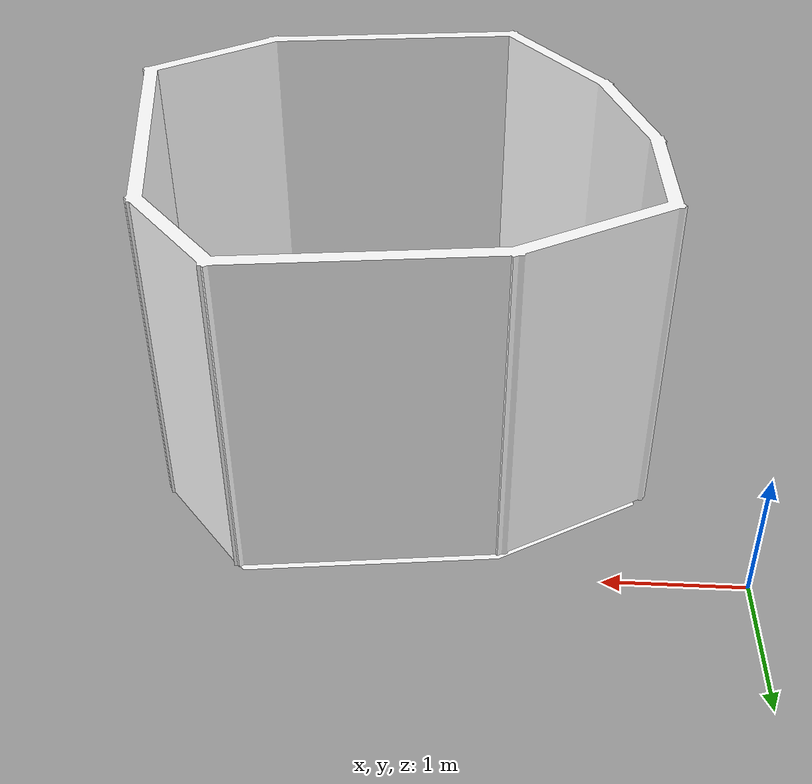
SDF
<sdf version="1.7">
  <world name="sim_world">
    <physics name="10ms" type="ode">
      <max_step_size>0.01</max_step_size>
      <real_time_factor>1.0</real_time_factor>
    </physics>
    <plugin filename="gz-sim-physics-system" name="gz::sim::systems::Physics">
    </plugin>
    <plugin filename="gz-sim-user-commands-system" name="gz::sim::systems::UserCommands">
    </plugin>
    <plugin filename="gz-sim-scene-broadcaster-system" name="gz::sim::systems::SceneBroadcaster">
    </plugin>
    <plugin filename="libdoor.so" name="door">
    </plugin>
    <plugin filename="liblift.so" name="lift">
    </plugin>
    <scene>
      <ambient>1 1 1</ambient>
      <background>0.8 0.8 0.8</background>
      <grid>false</grid>
    </scene>
    <gui fullscreen="0">
      <window>
        <width>1000</width>
        <height>845</height>
        <style material_theme="Light" material_primary="DeepOrange" material_accent="LightBlue" toolbar_color_light="#f3f3f3" toolbar_text_color_light="#111111" toolbar_color_dark="#414141" toolbar_text_color_dark="#f3f3f3" plugin_toolbar_color_light="#bbdefb" plugin_toolbar_text_color_light="#111111" plugin_toolbar_color_dark="#607d8b" plugin_toolbar_text_color_dark="#eeeeee" />
        <menus>
          <drawer default="false">
          </drawer>
        </menus>
      </window>
      <plugin filename="MinimalScene" name="3D View">
        <gz-gui>
          <title>3D View</title>
          <property type="bool" key="showTitleBar">false</property>
          <property type="string" key="state">docked</property>
        </gz-gui>
        <engine>ogre2</engine>
        <scene>scene</scene>
        <ambient_light>0.4 0.4 0.4</ambient_light>
        <background_color>0.8 0.8 0.8</background_color>
        <camera_pose>2.577976925602492 -21.82734828681878 10 0 0.6 1.57</camera_pose>
      </plugin>
      <plugin filename="EntityContextMenuPlugin" name="Entity context menu">
        <gz-gui>
          <property key="state" type="string">floating</property>
          <property key="width" type="double">5</property>
          <property key="height" type="double">5</property>
          <property key="showTitleBar" type="bool">false</property>
        </gz-gui>
      </plugin>
      <plugin filename="GzSceneManager" name="Scene Manager">
        <gz-gui>
          <property key="resizable" type="bool">false</property>
          <property key="width" type="double">5</property>
          <property key="height" type="double">5</property>
          <property key="state" type="string">floating</property>
          <property key="showTitleBar" type="bool">false</property>
        </gz-gui>
      </plugin>
      <plugin filename="InteractiveViewControl" name="Interactive view control">
        <gz-gui>
          <property key="resizable" type="bool">false</property>
          <property key="width" type="double">5</property>
          <property key="height" type="double">5</property>
          <property key="state" type="string">floating</property>
          <property key="showTitleBar" type="bool">false</property>
        </gz-gui>
      </plugin>
      <plugin filename="CameraTracking" name="Camera Tracking">
        <gz-gui>
          <property key="resizable" type="bool">false</property>
          <property key="width" type="double">5</property>
          <property key="height" type="double">5</property>
          <property key="state" type="string">floating</property>
          <property key="showTitleBar" type="bool">false</property>
        </gz-gui>
      </plugin>
      <plugin filename="MarkerManager" name="Marker manager">
        <gz-gui>
          <property key="resizable" type="bool">false</property>
          <property key="width" type="double">5</property>
          <property key="height" type="double">5</property>
          <property key="state" type="string">floating</property>
          <property key="showTitleBar" type="bool">false</property>
        </gz-gui>
      </plugin>
      <plugin filename="SelectEntities" name="Select Entities">
        <gz-gui>
          <property key="resizable" type="bool">false</property>
          <property key="width" type="double">5</property>
          <property key="height" type="double">5</property>
          <property key="state" type="string">floating</property>
          <property key="showTitleBar" type="bool">false</property>
        </gz-gui>
      </plugin>
      <plugin filename="Spawn" name="Spawn Entities">
        <gz-gui>
          <property key="resizable" type="bool">false</property>
          <property key="width" type="double">5</property>
          <property key="height" type="double">5</property>
          <property key="state" type="string">floating</property>
          <property key="showTitleBar" type="bool">false</property>
        </gz-gui>
      </plugin>
      <plugin filename="VisualizationCapabilities" name="Visualization Capabilities">
        <gz-gui>
          <property key="resizable" type="bool">false</property>
          <property key="width" type="double">5</property>
          <property key="height" type="double">5</property>
          <property key="state" type="string">floating</property>
          <property key="showTitleBar" type="bool">false</property>
        </gz-gui>
      </plugin>
      <plugin filename="WorldControl" name="World control">
        <gz-gui>
          <title>World control</title>
          <property type="bool" key="showTitleBar">false</property>
          <property type="bool" key="resizable">false</property>
          <property type="double" key="height">72</property>
          <property type="double" key="z">1</property>
          <property type="string" key="state">floating</property>
          <anchors target="3D View">
            <line own="left" target="left" />
            <line own="bottom" target="bottom" />
          </anchors>
        </gz-gui>
        <play_pause>true</play_pause>
        <step>true</step>
        <start_paused>true</start_paused>
        <use_event>true</use_event>
      </plugin>
      <plugin filename="WorldStats" name="World stats">
        <gz-gui>
          <title>World stats</title>
          <property type="bool" key="showTitleBar">false</property>
          <property type="bool" key="resizable">false</property>
          <property type="double" key="height">110</property>
          <property type="double" key="width">290</property>
          <property type="double" key="z">1</property>
          <property type="string" key="state">floating</property>
          <anchors target="3D View">
            <line own="right" target="right" />
            <line own="bottom" target="bottom" />
          </anchors>
        </gz-gui>
        <sim_time>true</sim_time>
        <real_time>true</real_time>
        <real_time_factor>true</real_time_factor>
        <iterations>true</iterations>
      </plugin>
      <plugin filename="Shapes" name="Shapes">
        <gz-gui>
          <property key="resizable" type="bool">false</property>
          <property key="x" type="double">0</property>
          <property key="y" type="double">0</property>
          <property key="width" type="double">250</property>
          <property key="height" type="double">50</property>
          <property key="state" type="string">floating</property>
          <property key="showTitleBar" type="bool">false</property>
          <property key="cardBackground" type="string">#666666</property>
        </gz-gui>
      </plugin>
      <plugin filename="Lights" name="Lights">
        <gz-gui>
          <property key="resizable" type="bool">false</property>
          <property key="x" type="double">250</property>
          <property key="y" type="double">0</property>
          <property key="width" type="double">150</property>
          <property key="height" type="double">50</property>
          <property key="state" type="string">floating</property>
          <property key="showTitleBar" type="bool">false</property>
          <property key="cardBackground" type="string">#666666</property>
        </gz-gui>
      </plugin>
      <plugin filename="TransformControl" name="Transform control">
        <gz-gui>
          <property key="resizable" type="bool">false</property>
          <property key="x" type="double">0</property>
          <property key="y" type="double">50</property>
          <property key="width" type="double">250</property>
          <property key="height" type="double">50</property>
          <property key="state" type="string">floating</property>
          <property key="showTitleBar" type="bool">false</property>
          <property key="cardBackground" type="string">#777777</property>
        </gz-gui>
      </plugin>
      <plugin filename="Screenshot" name="Screenshot">
        <gz-gui>
          <property key="resizable" type="bool">false</property>
          <property key="x" type="double">250</property>
          <property key="y" type="double">50</property>
          <property key="width" type="double">50</property>
          <property key="height" type="double">50</property>
          <property key="state" type="string">floating</property>
          <property key="showTitleBar" type="bool">false</property>
          <property key="cardBackground" type="string">#777777</property>
        </gz-gui>
      </plugin>
      <plugin filename="CopyPaste" name="CopyPaste">
        <gz-gui>
          <property key="resizable" type="bool">false</property>
          <property key="x" type="double">300</property>
          <property key="y" type="double">50</property>
          <property key="width" type="double">100</property>
          <property key="height" type="double">50</property>
          <property key="state" type="string">floating</property>
          <property key="showTitleBar" type="bool">false</property>
          <property key="cardBackground" type="string">#777777</property>
        </gz-gui>
      </plugin>
      <plugin filename="ComponentInspector" name="Component inspector">
        <gz-gui>
          <property type="bool" key="showTitleBar">false</property>
          <property type="string" key="state">docked</property>
        </gz-gui>
      </plugin>
      <plugin filename="EntityTree" name="Entity tree">
        <gz-gui>
          <property type="bool" key="showTitleBar">false</property>
          <property type="string" key="state">docked</property>
        </gz-gui>
      </plugin>
      <plugin filename="toggle_charging" name="toggle_charging" />
      <plugin name="toggle_floors" filename="toggle_floors">
        <floor name="L1" model_name="tb4_20260612_L1" />
      </plugin>
    </gui>
    <light type="directional" name="sun">
      <cast_shadows>true</cast_shadows>
      <pose>0 0 10 0 0 0</pose>
      <diffuse>1 1 1 1</diffuse>
      <specular>0.2 0.2 0.2 1</specular>
      <attenuation>
        <range>1000</range>
        <constant>0.09</constant>
        <linear>0.001</linear>
        <quadratic>0.001</quadratic>
      </attenuation>
      <direction>-0.5 0.1 -0.9</direction>
    </light>
    <include>
      <name>tb4_20260612_L1</name>
      <uri>model://tb4_20260612_L1</uri>
      <pose>0 0 0.0 0 0 0</pose>
    </include>
    <plugin name="register_component" filename="libregister_component.so">
      <component name="Chargers">
        <rmf_charger name="robot6_charger" x="1.1972718347573243" y="-1.1213489332479822" z="0.0" />
        <rmf_charger name="robot5_charger" x="2.2428560862966687" y="-0.6611101358281476" z="0.0" />
        <rmf_charger name="robot2_charger" x="4.070407798573495" y="-2.560154595194598" z="0.0" />
      </component>
    </plugin>
  </world>
</sdf>

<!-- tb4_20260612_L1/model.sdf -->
<sdf version="1.7">
  <model name="tb4_20260612_L1">
    <static>true</static>
    <link name="floor_1">
      <visual name="visual">
        <geometry>
          <mesh>
            <uri>model://tb4_20260612_L1/meshes/floor_1.obj</uri>
          </mesh>
        </geometry>
        <material>
          <diffuse>1.0 1.0 1.0</diffuse>
          <specular>0.1 0.1 0.1</specular>
          <pbr>
            <metal>
              <metalness>0.0</metalness>
              <albedo_map>model://tb4_20260612_L1/meshes/blue_linoleum.png</albedo_map>
            </metal>
          </pbr>
          <script>
            <uri>model://tb4_20260612_L1/meshes/</uri>
            <name>floor_1_Diffuse</name>
          </script>
        </material>
      </visual>
      <collision name="collision">
        <geometry>
          <mesh>
            <uri>model://tb4_20260612_L1/meshes/floor_1.obj</uri>
          </mesh>
        </geometry>
        <surface>
          <contact>
            <collide_bitmask>0x01</collide_bitmask>
          </contact>
        </surface>
      </collision>
    </link>
    <link name="wall_1">
      <visual name="wall_1">
        <geometry>
          <mesh>
            <uri>model://tb4_20260612_L1/meshes/wall_1.obj</uri>
          </mesh>
        </geometry>
        <transparency>0.0</transparency>
        <material>
          <diffuse>1.0 1.0 1.0</diffuse>
          <specular>0.1 0.1 0.1</specular>
          <pbr>
            <metal>
              <metalness>0.0</metalness>
              <albedo_map>model://tb4_20260612_L1/meshes/default.png</albedo_map>
            </metal>
          </pbr>
          <script>
            <uri>model://tb4_20260612_L1/meshes/</uri>
            <name>wall_1_Diffuse</name>
          </script>
        </material>
      </visual>
      <collision name="collision">
        <geometry>
          <mesh>
            <uri>model://tb4_20260612_L1/meshes/wall_1.obj</uri>
          </mesh>
        </geometry>
        <surface>
          <contact>
            <collide_bitmask>0x01</collide_bitmask>
          </contact>
        </surface>
      </collision>
      <pose>0.6237815125708915 -3.653407291678994 0 0 0 0</pose>
    </link>
  </model>
</sdf>
